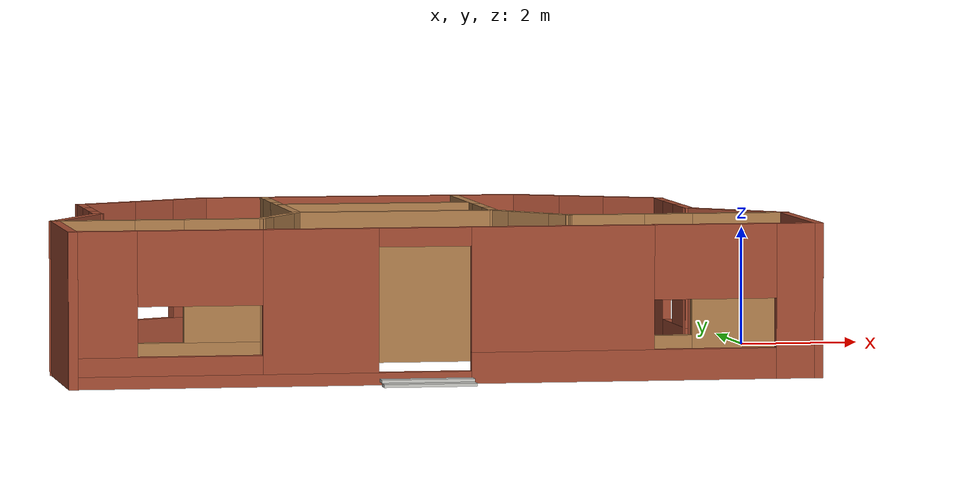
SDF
<?xml version='1.0'?>
<sdf version='1.6'>
  <model name='office'>
    <pose frame=''>-6.12434 -2.55987 0 0 -0 0</pose>
    <link name='Stairs_1'>
      <visual name='Stairs_1_Visual_0'>
        <pose frame=''>-0.38323 -4.06197 0.025 0 -0 -3.14159</pose>
        <geometry>
          <box>
            <size>1.5 0.25 0.05</size>
          </box>
        </geometry>
        <material>
          <script>
            <uri>file://media/materials/scripts/gazebo.material</uri>
            <name>Gazebo/CeilingTiled</name>
          </script>
          <ambient>0.996078 0.47451 0.0196078 1</ambient>
        </material>
        <meta>
          <layer>0</layer>
        </meta>
      </visual>
      <collision name='Stairs_1_Collision_0'>
        <geometry>
          <box>
            <size>1.5 0.25 0.05</size>
          </box>
        </geometry>
        <pose frame=''>-0.38323 -4.06197 0.025 0 -0 -3.14159</pose>
      </collision>
      <visual name='Stairs_1_Visual_1'>
        <pose frame=''>-0.38323 -3.81197 0.075 0 -0 -3.14159</pose>
        <geometry>
          <box>
            <size>1.5 0.25 0.05</size>
          </box>
        </geometry>
        <material>
          <script>
            <uri>file://media/materials/scripts/gazebo.material</uri>
            <name>Gazebo/CeilingTiled</name>
          </script>
          <ambient>0.996078 0.47451 0.0196078 1</ambient>
        </material>
        <meta>
          <layer>0</layer>
        </meta>
      </visual>
      <collision name='Stairs_1_Collision_1'>
        <geometry>
          <box>
            <size>1.5 0.25 0.05</size>
          </box>
        </geometry>
        <pose frame=''>-0.38323 -3.81197 0.075 0 -0 -3.14159</pose>
      </collision>
    </link>
    <link name='Wall_0'>
      <collision name='Wall_0_Collision'>
        <geometry>
          <box>
            <size>1.98188 0.15 2.5</size>
          </box>
        </geometry>
        <pose frame=''>0 0 1.25 0 -0 0</pose>
      </collision>
      <visual name='Wall_0_Visual'>
        <pose frame=''>0 0 1.25 0 -0 0</pose>
        <geometry>
          <box>
            <size>1.98188 0.15 2.5</size>
          </box>
        </geometry>
        <material>
          <script>
            <uri>file://media/materials/scripts/gazebo.material</uri>
            <name>Gazebo/Bricks</name>
          </script>
          <ambient>1 1 1 1</ambient>
        </material>
        <meta>
          <layer>0</layer>
        </meta>
      </visual>
      <pose frame=''>-5.58652 -0.368929 0 0 -0 1.06997</pose>
    </link>
    <link name='Wall_1'>
      <pose frame=''>-5.14673 1.60952 0 0 -0 1.5708</pose>
      <visual name='Wall_1_Visual_0'>
        <pose frame=''>-0.885279 0 1.25 0 -0 0</pose>
        <geometry>
          <box>
            <size>0.729441 0.15 2.5</size>
          </box>
        </geometry>
        <material>
          <script>
            <uri>file://media/materials/scripts/gazebo.material</uri>
            <name>Gazebo/Bricks</name>
          </script>
          <ambient>1 1 1 1</ambient>
        </material>
        <meta>
          <layer>0</layer>
        </meta>
      </visual>
      <collision name='Wall_1_Collision_0'>
        <geometry>
          <box>
            <size>0.729441 0.15 2.5</size>
          </box>
        </geometry>
        <pose frame=''>-0.885279 0 1.25 0 -0 0</pose>
      </collision>
      <visual name='Wall_1_Visual_1'>
        <pose frame=''>0.364721 0 0.25 0 -0 0</pose>
        <geometry>
          <box>
            <size>1.77056 0.15 0.5</size>
          </box>
        </geometry>
        <material>
          <script>
            <uri>file://media/materials/scripts/gazebo.material</uri>
            <name>Gazebo/Bricks</name>
          </script>
          <ambient>1 1 1 1</ambient>
        </material>
        <meta>
          <layer>0</layer>
        </meta>
      </visual>
      <collision name='Wall_1_Collision_1'>
        <geometry>
          <box>
            <size>1.77056 0.15 0.5</size>
          </box>
        </geometry>
        <pose frame=''>0.364721 0 0.25 0 -0 0</pose>
      </collision>
      <visual name='Wall_1_Visual_2'>
        <pose frame=''>0.764721 0 1.5 0 -0 0</pose>
        <geometry>
          <box>
            <size>0.970559 0.15 2</size>
          </box>
        </geometry>
        <material>
          <script>
            <uri>file://media/materials/scripts/gazebo.material</uri>
            <name>Gazebo/Bricks</name>
          </script>
          <ambient>1 1 1 1</ambient>
        </material>
        <meta>
          <layer>0</layer>
        </meta>
      </visual>
      <collision name='Wall_1_Collision_2'>
        <geometry>
          <box>
            <size>0.970559 0.15 2</size>
          </box>
        </geometry>
        <pose frame=''>0.764721 0 1.5 0 -0 0</pose>
      </collision>
      <visual name='Wall_1_Visual_3'>
        <pose frame=''>-0.120559 0 1.9 0 -0 0</pose>
        <geometry>
          <box>
            <size>0.8 0.15 1.2</size>
          </box>
        </geometry>
        <material>
          <script>
            <uri>file://media/materials/scripts/gazebo.material</uri>
            <name>Gazebo/Bricks</name>
          </script>
          <ambient>1 1 1 1</ambient>
        </material>
        <meta>
          <layer>0</layer>
        </meta>
      </visual>
      <collision name='Wall_1_Collision_3'>
        <geometry>
          <box>
            <size>0.8 0.15 1.2</size>
          </box>
        </geometry>
        <pose frame=''>-0.120559 0 1.9 0 -0 0</pose>
      </collision>
    </link>
    <link name='Wall_11'>
      <pose frame=''>-0.005779 -3.66155 0 0 -0 3.14144</pose>
      <visual name='Wall_11_Visual_0'>
        <pose frame=''>-5.71149 0 1.25 0 -0 0</pose>
        <geometry>
          <box>
            <size>0.768083 0.15 2.5</size>
          </box>
        </geometry>
        <material>
          <script>
            <uri>file://media/materials/scripts/gazebo.material</uri>
            <name>Gazebo/Bricks</name>
          </script>
          <ambient>1 1 1 1</ambient>
        </material>
        <meta>
          <layer>0</layer>
        </meta>
      </visual>
      <collision name='Wall_11_Collision_0'>
        <geometry>
          <box>
            <size>0.768083 0.15 2.5</size>
          </box>
        </geometry>
        <pose frame=''>-5.71149 0 1.25 0 -0 0</pose>
      </collision>
      <visual name='Wall_11_Visual_1'>
        <pose frame=''>-2.84313 0 0.25 0 -0 0</pose>
        <geometry>
          <box>
            <size>4.96863 0.15 0.5</size>
          </box>
        </geometry>
        <material>
          <script>
            <uri>file://media/materials/scripts/gazebo.material</uri>
            <name>Gazebo/Bricks</name>
          </script>
          <ambient>1 1 1 1</ambient>
        </material>
        <meta>
          <layer>0</layer>
        </meta>
      </visual>
      <collision name='Wall_11_Collision_1'>
        <geometry>
          <box>
            <size>4.96863 0.15 0.5</size>
          </box>
        </geometry>
        <pose frame=''>-2.84313 0 0.25 0 -0 0</pose>
      </collision>
      <visual name='Wall_11_Visual_2'>
        <pose frame=''>2.86836 0 0.1 0 -0 0</pose>
        <geometry>
          <box>
            <size>6.45434 0.15 0.2</size>
          </box>
        </geometry>
        <material>
          <script>
            <uri>file://media/materials/scripts/gazebo.material</uri>
            <name>Gazebo/Bricks</name>
          </script>
          <ambient>1 1 1 1</ambient>
        </material>
        <meta>
          <layer>0</layer>
        </meta>
      </visual>
      <collision name='Wall_11_Collision_2'>
        <geometry>
          <box>
            <size>6.45434 0.15 0.2</size>
          </box>
        </geometry>
        <pose frame=''>2.86836 0 0.1 0 -0 0</pose>
      </collision>
      <visual name='Wall_11_Visual_3'>
        <pose frame=''>2.07037 0 1.35 0 -0 0</pose>
        <geometry>
          <box>
            <size>1.85837 0.15 2.3</size>
          </box>
        </geometry>
        <material>
          <script>
            <uri>file://media/materials/scripts/gazebo.material</uri>
            <name>Gazebo/Bricks</name>
          </script>
          <ambient>1 1 1 1</ambient>
        </material>
        <meta>
          <layer>0</layer>
        </meta>
      </visual>
      <collision name='Wall_11_Collision_3'>
        <geometry>
          <box>
            <size>1.85837 0.15 2.3</size>
          </box>
        </geometry>
        <pose frame=''>2.07037 0 1.35 0 -0 0</pose>
      </collision>
      <visual name='Wall_11_Visual_4'>
        <pose frame=''>4.54754 0 0.35 0 -0 0</pose>
        <geometry>
          <box>
            <size>3.09597 0.15 0.3</size>
          </box>
        </geometry>
        <material>
          <script>
            <uri>file://media/materials/scripts/gazebo.material</uri>
            <name>Gazebo/Bricks</name>
          </script>
          <ambient>1 1 1 1</ambient>
        </material>
        <meta>
          <layer>0</layer>
        </meta>
      </visual>
      <collision name='Wall_11_Collision_4'>
        <geometry>
          <box>
            <size>3.09597 0.15 0.3</size>
          </box>
        </geometry>
        <pose frame=''>4.54754 0 0.35 0 -0 0</pose>
      </collision>
      <visual name='Wall_11_Visual_5'>
        <pose frame=''>-1.84313 0 1.5 0 -0 0</pose>
        <geometry>
          <box>
            <size>2.96863 0.15 2</size>
          </box>
        </geometry>
        <material>
          <script>
            <uri>file://media/materials/scripts/gazebo.material</uri>
            <name>Gazebo/Bricks</name>
          </script>
          <ambient>1 1 1 1</ambient>
        </material>
        <meta>
          <layer>0</layer>
        </meta>
      </visual>
      <collision name='Wall_11_Collision_5'>
        <geometry>
          <box>
            <size>2.96863 0.15 2</size>
          </box>
        </geometry>
        <pose frame=''>-1.84313 0 1.5 0 -0 0</pose>
      </collision>
      <visual name='Wall_11_Visual_6'>
        <pose frame=''>-1.84313 0 1.5 0 -0 0</pose>
        <geometry>
          <box>
            <size>2.96863 0.15 2</size>
          </box>
        </geometry>
        <material>
          <script>
            <uri>file://media/materials/scripts/gazebo.material</uri>
            <name>Gazebo/Bricks</name>
          </script>
          <ambient>1 1 1 1</ambient>
        </material>
        <meta>
          <layer>0</layer>
        </meta>
      </visual>
      <collision name='Wall_11_Collision_6'>
        <geometry>
          <box>
            <size>2.96863 0.15 2</size>
          </box>
        </geometry>
        <pose frame=''>-1.84313 0 1.5 0 -0 0</pose>
      </collision>
      <visual name='Wall_11_Visual_7'>
        <pose frame=''>5.54754 0 1.5 0 -0 0</pose>
        <geometry>
          <box>
            <size>1.09597 0.15 2</size>
          </box>
        </geometry>
        <material>
          <script>
            <uri>file://media/materials/scripts/gazebo.material</uri>
            <name>Gazebo/Bricks</name>
          </script>
          <ambient>1 1 1 1</ambient>
        </material>
        <meta>
          <layer>0</layer>
        </meta>
      </visual>
      <collision name='Wall_11_Collision_7'>
        <geometry>
          <box>
            <size>1.09597 0.15 2</size>
          </box>
        </geometry>
        <pose frame=''>5.54754 0 1.5 0 -0 0</pose>
      </collision>
      <visual name='Wall_11_Visual_8'>
        <pose frame=''>-4.32744 0 1.9 0 -0 0</pose>
        <geometry>
          <box>
            <size>2 0.15 1.2</size>
          </box>
        </geometry>
        <material>
          <script>
            <uri>file://media/materials/scripts/gazebo.material</uri>
            <name>Gazebo/Bricks</name>
          </script>
          <ambient>1 1 1 1</ambient>
        </material>
        <meta>
          <layer>0</layer>
        </meta>
      </visual>
      <collision name='Wall_11_Collision_8'>
        <geometry>
          <box>
            <size>2 0.15 1.2</size>
          </box>
        </geometry>
        <pose frame=''>-4.32744 0 1.9 0 -0 0</pose>
      </collision>
      <visual name='Wall_11_Visual_9'>
        <pose frame=''>3.99955 0 1.9 0 -0 0</pose>
        <geometry>
          <box>
            <size>2 0.15 1.2</size>
          </box>
        </geometry>
        <material>
          <script>
            <uri>file://media/materials/scripts/gazebo.material</uri>
            <name>Gazebo/Bricks</name>
          </script>
          <ambient>1 1 1 1</ambient>
        </material>
        <meta>
          <layer>0</layer>
        </meta>
      </visual>
      <collision name='Wall_11_Collision_9'>
        <geometry>
          <box>
            <size>2 0.15 1.2</size>
          </box>
        </geometry>
        <pose frame=''>3.99955 0 1.9 0 -0 0</pose>
      </collision>
      <visual name='Wall_11_Visual_10'>
        <pose frame=''>0.391186 0 2.35 0 -0 0</pose>
        <geometry>
          <box>
            <size>1.5 0.15 0.3</size>
          </box>
        </geometry>
        <material>
          <script>
            <uri>file://media/materials/scripts/gazebo.material</uri>
            <name>Gazebo/Bricks</name>
          </script>
          <ambient>1 1 1 1</ambient>
        </material>
        <meta>
          <layer>0</layer>
        </meta>
      </visual>
      <collision name='Wall_11_Collision_10'>
        <geometry>
          <box>
            <size>1.5 0.15 0.3</size>
          </box>
        </geometry>
        <pose frame=''>0.391186 0 2.35 0 -0 0</pose>
      </collision>
      <visual name='Wall_11_Visual_11'>
        <pose frame=''>0.391186 0 2.35 0 -0 0</pose>
        <geometry>
          <box>
            <size>1.5 0.15 0.3</size>
          </box>
        </geometry>
        <material>
          <script>
            <uri>file://media/materials/scripts/gazebo.material</uri>
            <name>Gazebo/Bricks</name>
          </script>
          <ambient>1 1 1 1</ambient>
        </material>
        <meta>
          <layer>0</layer>
        </meta>
      </visual>
      <collision name='Wall_11_Collision_11'>
        <geometry>
          <box>
            <size>1.5 0.15 0.3</size>
          </box>
        </geometry>
        <pose frame=''>0.391186 0 2.35 0 -0 0</pose>
      </collision>
    </link>
    <link name='Wall_13'>
      <pose frame=''>-4.35131 -1.15226 0 0 -0 0</pose>
      <visual name='Wall_13_Visual_0'>
        <pose frame=''>-1.06906 0 1.25 0 -0 0</pose>
        <geometry>
          <box>
            <size>1.36187 0.15 2.5</size>
          </box>
        </geometry>
        <material>
          <script>
            <uri>file://media/materials/scripts/gazebo.material</uri>
            <name>Gazebo/Wood</name>
          </script>
          <ambient>1 1 1 1</ambient>
        </material>
        <meta>
          <layer>0</layer>
        </meta>
      </visual>
      <collision name='Wall_13_Collision_0'>
        <geometry>
          <box>
            <size>1.36187 0.15 2.5</size>
          </box>
        </geometry>
        <pose frame=''>-1.06906 0 1.25 0 -0 0</pose>
      </collision>
      <visual name='Wall_13_Visual_1'>
        <pose frame=''>0.680938 0 0.25 0 -0 0</pose>
        <geometry>
          <box>
            <size>2.13813 0.15 0.5</size>
          </box>
        </geometry>
        <material>
          <script>
            <uri>file://media/materials/scripts/gazebo.material</uri>
            <name>Gazebo/Wood</name>
          </script>
          <ambient>1 1 1 1</ambient>
        </material>
        <meta>
          <layer>0</layer>
        </meta>
      </visual>
      <collision name='Wall_13_Collision_1'>
        <geometry>
          <box>
            <size>2.13813 0.15 0.5</size>
          </box>
        </geometry>
        <pose frame=''>0.680938 0 0.25 0 -0 0</pose>
      </collision>
      <visual name='Wall_13_Visual_2'>
        <pose frame=''>1.08094 0 1.5 0 -0 0</pose>
        <geometry>
          <box>
            <size>1.33813 0.15 2</size>
          </box>
        </geometry>
        <material>
          <script>
            <uri>file://media/materials/scripts/gazebo.material</uri>
            <name>Gazebo/Wood</name>
          </script>
          <ambient>1 1 1 1</ambient>
        </material>
        <meta>
          <layer>0</layer>
        </meta>
      </visual>
      <collision name='Wall_13_Collision_2'>
        <geometry>
          <box>
            <size>1.33813 0.15 2</size>
          </box>
        </geometry>
        <pose frame=''>1.08094 0 1.5 0 -0 0</pose>
      </collision>
      <visual name='Wall_13_Visual_3'>
        <pose frame=''>0.011875 0 1.9 0 -0 0</pose>
        <geometry>
          <box>
            <size>0.8 0.15 1.2</size>
          </box>
        </geometry>
        <material>
          <script>
            <uri>file://media/materials/scripts/gazebo.material</uri>
            <name>Gazebo/Wood</name>
          </script>
          <ambient>1 1 1 1</ambient>
        </material>
        <meta>
          <layer>0</layer>
        </meta>
      </visual>
      <collision name='Wall_13_Collision_3'>
        <geometry>
          <box>
            <size>0.8 0.15 1.2</size>
          </box>
        </geometry>
        <pose frame=''>0.011875 0 1.9 0 -0 0</pose>
      </collision>
    </link>
    <link name='Wall_14'>
      <pose frame=''>-2.27631 -0.459443 0 0 -0 1.0472</pose>
      <visual name='Wall_14_Visual_0'>
        <pose frame=''>-0.639423 0 1.25 0 -0 0</pose>
        <geometry>
          <box>
            <size>0.471153 0.15 2.5</size>
          </box>
        </geometry>
        <material>
          <script>
            <uri>file://media/materials/scripts/gazebo.material</uri>
            <name>Gazebo/Wood</name>
          </script>
          <ambient>1 1 1 1</ambient>
        </material>
        <meta>
          <layer>0</layer>
        </meta>
      </visual>
      <collision name='Wall_14_Collision_0'>
        <geometry>
          <box>
            <size>0.471153 0.15 2.5</size>
          </box>
        </geometry>
        <pose frame=''>-0.639423 0 1.25 0 -0 0</pose>
      </collision>
      <visual name='Wall_14_Visual_1'>
        <pose frame=''>0.685577 0 1.25 0 -0 0</pose>
        <geometry>
          <box>
            <size>0.378847 0.15 2.5</size>
          </box>
        </geometry>
        <material>
          <script>
            <uri>file://media/materials/scripts/gazebo.material</uri>
            <name>Gazebo/Wood</name>
          </script>
          <ambient>1 1 1 1</ambient>
        </material>
        <meta>
          <layer>0</layer>
        </meta>
      </visual>
      <collision name='Wall_14_Collision_1'>
        <geometry>
          <box>
            <size>0.378847 0.15 2.5</size>
          </box>
        </geometry>
        <pose frame=''>0.685577 0 1.25 0 -0 0</pose>
      </collision>
      <visual name='Wall_14_Visual_2'>
        <pose frame=''>0.046153 0 2.25 0 -0 0</pose>
        <geometry>
          <box>
            <size>0.9 0.15 0.5</size>
          </box>
        </geometry>
        <material>
          <script>
            <uri>file://media/materials/scripts/gazebo.material</uri>
            <name>Gazebo/Wood</name>
          </script>
          <ambient>1 1 1 1</ambient>
        </material>
        <meta>
          <layer>0</layer>
        </meta>
      </visual>
      <collision name='Wall_14_Collision_2'>
        <geometry>
          <box>
            <size>0.9 0.15 0.5</size>
          </box>
        </geometry>
        <pose frame=''>0.046153 0 2.25 0 -0 0</pose>
      </collision>
    </link>
    <link name='Wall_15'>
      <pose frame=''>-1.8763 2.15838 0 0 -0 1.5708</pose>
      <visual name='Wall_15_Visual_0'>
        <pose frame=''>-0.703876 0 1.25 0 -0 0</pose>
        <geometry>
          <box>
            <size>2.59225 0.15 2.5</size>
          </box>
        </geometry>
        <material>
          <script>
            <uri>file://media/materials/scripts/gazebo.material</uri>
            <name>Gazebo/Wood</name>
          </script>
          <ambient>1 1 1 1</ambient>
        </material>
        <meta>
          <layer>0</layer>
        </meta>
      </visual>
      <collision name='Wall_15_Collision_0'>
        <geometry>
          <box>
            <size>2.59225 0.15 2.5</size>
          </box>
        </geometry>
        <pose frame=''>-0.703876 0 1.25 0 -0 0</pose>
      </collision>
      <visual name='Wall_15_Visual_1'>
        <pose frame=''>1.74612 0 1.25 0 -0 0</pose>
        <geometry>
          <box>
            <size>0.507751 0.15 2.5</size>
          </box>
        </geometry>
        <material>
          <script>
            <uri>file://media/materials/scripts/gazebo.material</uri>
            <name>Gazebo/Wood</name>
          </script>
          <ambient>1 1 1 1</ambient>
        </material>
        <meta>
          <layer>0</layer>
        </meta>
      </visual>
      <collision name='Wall_15_Collision_1'>
        <geometry>
          <box>
            <size>0.507751 0.15 2.5</size>
          </box>
        </geometry>
        <pose frame=''>1.74612 0 1.25 0 -0 0</pose>
      </collision>
      <visual name='Wall_15_Visual_2'>
        <pose frame=''>1.04225 0 2.25 0 -0 0</pose>
        <geometry>
          <box>
            <size>0.9 0.15 0.5</size>
          </box>
        </geometry>
        <material>
          <script>
            <uri>file://media/materials/scripts/gazebo.material</uri>
            <name>Gazebo/Wood</name>
          </script>
          <ambient>1 1 1 1</ambient>
        </material>
        <meta>
          <layer>0</layer>
        </meta>
      </visual>
      <collision name='Wall_15_Collision_2'>
        <geometry>
          <box>
            <size>0.9 0.15 0.5</size>
          </box>
        </geometry>
        <pose frame=''>1.04225 0 2.25 0 -0 0</pose>
      </collision>
    </link>
    <link name='Wall_17'>
      <pose frame=''>4.22996 -1.12475 0 0 -0 3.14097</pose>
      <visual name='Wall_17_Visual_0'>
        <pose frame=''>-1.055 0 1.25 0 -0 0</pose>
        <geometry>
          <box>
            <size>1.62416 0.15 2.5</size>
          </box>
        </geometry>
        <material>
          <script>
            <uri>file://media/materials/scripts/gazebo.material</uri>
            <name>Gazebo/Wood</name>
          </script>
          <ambient>1 1 1 1</ambient>
        </material>
        <meta>
          <layer>0</layer>
        </meta>
      </visual>
      <collision name='Wall_17_Collision_0'>
        <geometry>
          <box>
            <size>1.62416 0.15 2.5</size>
          </box>
        </geometry>
        <pose frame=''>-1.055 0 1.25 0 -0 0</pose>
      </collision>
      <visual name='Wall_17_Visual_1'>
        <pose frame=''>0.812077 0 0.25 0 -0 0</pose>
        <geometry>
          <box>
            <size>2.11001 0.15 0.5</size>
          </box>
        </geometry>
        <material>
          <script>
            <uri>file://media/materials/scripts/gazebo.material</uri>
            <name>Gazebo/Wood</name>
          </script>
          <ambient>1 1 1 1</ambient>
        </material>
        <meta>
          <layer>0</layer>
        </meta>
      </visual>
      <collision name='Wall_17_Collision_1'>
        <geometry>
          <box>
            <size>2.11001 0.15 0.5</size>
          </box>
        </geometry>
        <pose frame=''>0.812077 0 0.25 0 -0 0</pose>
      </collision>
      <visual name='Wall_17_Visual_2'>
        <pose frame=''>1.21208 0 1.5 0 -0 0</pose>
        <geometry>
          <box>
            <size>1.31001 0.15 2</size>
          </box>
        </geometry>
        <material>
          <script>
            <uri>file://media/materials/scripts/gazebo.material</uri>
            <name>Gazebo/Wood</name>
          </script>
          <ambient>1 1 1 1</ambient>
        </material>
        <meta>
          <layer>0</layer>
        </meta>
      </visual>
      <collision name='Wall_17_Collision_2'>
        <geometry>
          <box>
            <size>1.31001 0.15 2</size>
          </box>
        </geometry>
        <pose frame=''>1.21208 0 1.5 0 -0 0</pose>
      </collision>
      <visual name='Wall_17_Visual_3'>
        <pose frame=''>0.157074 0 1.9 0 -0 0</pose>
        <geometry>
          <box>
            <size>0.8 0.15 1.2</size>
          </box>
        </geometry>
        <material>
          <script>
            <uri>file://media/materials/scripts/gazebo.material</uri>
            <name>Gazebo/Wood</name>
          </script>
          <ambient>1 1 1 1</ambient>
        </material>
        <meta>
          <layer>0</layer>
        </meta>
      </visual>
      <collision name='Wall_17_Collision_3'>
        <geometry>
          <box>
            <size>0.8 0.15 1.2</size>
          </box>
        </geometry>
        <pose frame=''>0.157074 0 1.9 0 -0 0</pose>
      </collision>
    </link>
    <link name='Wall_18'>
      <pose frame=''>1.92549 -0.446567 0 0 -0 2.21863</pose>
      <visual name='Wall_18_Visual_0'>
        <pose frame=''>-0.686549 0 1.25 0 -0 0</pose>
        <geometry>
          <box>
            <size>0.475088 0.15 2.5</size>
          </box>
        </geometry>
        <material>
          <script>
            <uri>file://media/materials/scripts/gazebo.material</uri>
            <name>Gazebo/Wood</name>
          </script>
          <ambient>1 1 1 1</ambient>
        </material>
        <meta>
          <layer>0</layer>
        </meta>
      </visual>
      <collision name='Wall_18_Collision_0'>
        <geometry>
          <box>
            <size>0.475088 0.15 2.5</size>
          </box>
        </geometry>
        <pose frame=''>-0.686549 0 1.25 0 -0 0</pose>
      </collision>
      <visual name='Wall_18_Visual_1'>
        <pose frame=''>0.687544 0 1.25 0 -0 0</pose>
        <geometry>
          <box>
            <size>0.473098 0.15 2.5</size>
          </box>
        </geometry>
        <material>
          <script>
            <uri>file://media/materials/scripts/gazebo.material</uri>
            <name>Gazebo/Wood</name>
          </script>
          <ambient>1 1 1 1</ambient>
        </material>
        <meta>
          <layer>0</layer>
        </meta>
      </visual>
      <collision name='Wall_18_Collision_1'>
        <geometry>
          <box>
            <size>0.473098 0.15 2.5</size>
          </box>
        </geometry>
        <pose frame=''>0.687544 0 1.25 0 -0 0</pose>
      </collision>
      <visual name='Wall_18_Visual_2'>
        <pose frame=''>0.000995 0 2.25 0 -0 0</pose>
        <geometry>
          <box>
            <size>0.9 0.15 0.5</size>
          </box>
        </geometry>
        <material>
          <script>
            <uri>file://media/materials/scripts/gazebo.material</uri>
            <name>Gazebo/Wood</name>
          </script>
          <ambient>1 1 1 1</ambient>
        </material>
        <meta>
          <layer>0</layer>
        </meta>
      </visual>
      <collision name='Wall_18_Collision_2'>
        <geometry>
          <box>
            <size>0.9 0.15 0.5</size>
          </box>
        </geometry>
        <pose frame=''>0.000995 0 2.25 0 -0 0</pose>
      </collision>
    </link>
    <link name='Wall_19'>
      <pose frame=''>1.41143 2.12892 0 0 -0 1.57167</pose>
      <visual name='Wall_19_Visual_0'>
        <pose frame=''>-1.58952 0 1.25 0 -0 0</pose>
        <geometry>
          <box>
            <size>0.767825 0.15 2.5</size>
          </box>
        </geometry>
        <material>
          <script>
            <uri>file://media/materials/scripts/gazebo.material</uri>
            <name>Gazebo/Wood</name>
          </script>
          <ambient>1 1 1 1</ambient>
        </material>
        <meta>
          <layer>0</layer>
        </meta>
      </visual>
      <collision name='Wall_19_Collision_0'>
        <geometry>
          <box>
            <size>0.767825 0.15 2.5</size>
          </box>
        </geometry>
        <pose frame=''>-1.58952 0 1.25 0 -0 0</pose>
      </collision>
      <visual name='Wall_19_Visual_1'>
        <pose frame=''>0.833912 0 1.25 0 -0 0</pose>
        <geometry>
          <box>
            <size>2.27903 0.15 2.5</size>
          </box>
        </geometry>
        <material>
          <script>
            <uri>file://media/materials/scripts/gazebo.material</uri>
            <name>Gazebo/Wood</name>
          </script>
          <ambient>1 1 1 1</ambient>
        </material>
        <meta>
          <layer>0</layer>
        </meta>
      </visual>
      <collision name='Wall_19_Collision_1'>
        <geometry>
          <box>
            <size>2.27903 0.15 2.5</size>
          </box>
        </geometry>
        <pose frame=''>0.833912 0 1.25 0 -0 0</pose>
      </collision>
      <visual name='Wall_19_Visual_2'>
        <pose frame=''>-0.755604 0 2.25 0 -0 0</pose>
        <geometry>
          <box>
            <size>0.9 0.15 0.5</size>
          </box>
        </geometry>
        <material>
          <script>
            <uri>file://media/materials/scripts/gazebo.material</uri>
            <name>Gazebo/Wood</name>
          </script>
          <ambient>1 1 1 1</ambient>
        </material>
        <meta>
          <layer>0</layer>
        </meta>
      </visual>
      <collision name='Wall_19_Collision_2'>
        <geometry>
          <box>
            <size>0.9 0.15 0.5</size>
          </box>
        </geometry>
        <pose frame=''>-0.755604 0 2.25 0 -0 0</pose>
      </collision>
    </link>
    <link name='Wall_2'>
      <pose frame=''>-4.0209 3.43452 0 0 -0 0.523599</pose>
      <visual name='Wall_2_Visual_0'>
        <pose frame=''>-0.801694 0 1.25 0 -0 0</pose>
        <geometry>
          <box>
            <size>1.14661 0.15 2.5</size>
          </box>
        </geometry>
        <material>
          <script>
            <uri>file://media/materials/scripts/gazebo.material</uri>
            <name>Gazebo/Bricks</name>
          </script>
          <ambient>1 1 1 1</ambient>
        </material>
        <meta>
          <layer>0</layer>
        </meta>
      </visual>
      <collision name='Wall_2_Collision_0'>
        <geometry>
          <box>
            <size>1.14661 0.15 2.5</size>
          </box>
        </geometry>
        <pose frame=''>-0.801694 0 1.25 0 -0 0</pose>
      </collision>
      <visual name='Wall_2_Visual_1'>
        <pose frame=''>0.573306 0 0.25 0 -0 0</pose>
        <geometry>
          <box>
            <size>1.60339 0.15 0.5</size>
          </box>
        </geometry>
        <material>
          <script>
            <uri>file://media/materials/scripts/gazebo.material</uri>
            <name>Gazebo/Bricks</name>
          </script>
          <ambient>1 1 1 1</ambient>
        </material>
        <meta>
          <layer>0</layer>
        </meta>
      </visual>
      <collision name='Wall_2_Collision_1'>
        <geometry>
          <box>
            <size>1.60339 0.15 0.5</size>
          </box>
        </geometry>
        <pose frame=''>0.573306 0 0.25 0 -0 0</pose>
      </collision>
      <visual name='Wall_2_Visual_2'>
        <pose frame=''>0.973306 0 1.5 0 -0 0</pose>
        <geometry>
          <box>
            <size>0.803388 0.15 2</size>
          </box>
        </geometry>
        <material>
          <script>
            <uri>file://media/materials/scripts/gazebo.material</uri>
            <name>Gazebo/Bricks</name>
          </script>
          <ambient>1 1 1 1</ambient>
        </material>
        <meta>
          <layer>0</layer>
        </meta>
      </visual>
      <collision name='Wall_2_Collision_2'>
        <geometry>
          <box>
            <size>0.803388 0.15 2</size>
          </box>
        </geometry>
        <pose frame=''>0.973306 0 1.5 0 -0 0</pose>
      </collision>
      <visual name='Wall_2_Visual_3'>
        <pose frame=''>0.171612 0 1.9 0 -0 0</pose>
        <geometry>
          <box>
            <size>0.8 0.15 1.2</size>
          </box>
        </geometry>
        <material>
          <script>
            <uri>file://media/materials/scripts/gazebo.material</uri>
            <name>Gazebo/Bricks</name>
          </script>
          <ambient>1 1 1 1</ambient>
        </material>
        <meta>
          <layer>0</layer>
        </meta>
      </visual>
      <collision name='Wall_2_Collision_3'>
        <geometry>
          <box>
            <size>0.8 0.15 1.2</size>
          </box>
        </geometry>
        <pose frame=''>0.171612 0 1.9 0 -0 0</pose>
      </collision>
    </link>
    <link name='Wall_21'>
      <collision name='Wall_21_Collision'>
        <geometry>
          <box>
            <size>3.43942 0.15 2.5</size>
          </box>
        </geometry>
        <pose frame=''>0 0 1.25 0 -0 0</pose>
      </collision>
      <visual name='Wall_21_Visual'>
        <pose frame=''>0 0 1.25 0 -0 0</pose>
        <geometry>
          <box>
            <size>3.43942 0.15 2.5</size>
          </box>
        </geometry>
        <material>
          <script>
            <uri>file://media/materials/scripts/gazebo.material</uri>
            <name>Gazebo/Wood</name>
          </script>
          <ambient>1 1 1 1</ambient>
        </material>
        <meta>
          <layer>0</layer>
        </meta>
      </visual>
      <pose frame=''>-0.231606 0.231936 0 0 0 -0.000876</pose>
    </link>
    <link name='Wall_23'>
      <collision name='Wall_23_Collision'>
        <geometry>
          <box>
            <size>3.25 0.15 2.5</size>
          </box>
        </geometry>
        <pose frame=''>0 0 1.25 0 -0 0</pose>
      </collision>
      <visual name='Wall_23_Visual'>
        <pose frame=''>0 0 1.25 0 -0 0</pose>
        <geometry>
          <box>
            <size>3.25 0.15 2.5</size>
          </box>
        </geometry>
        <material>
          <script>
            <uri>file://media/materials/scripts/gazebo.material</uri>
            <name>Gazebo/Wood</name>
          </script>
          <ambient>1 1 1 1</ambient>
        </material>
        <meta>
          <layer>0</layer>
        </meta>
      </visual>
      <pose frame=''>-0.289168 2.25227 0 0 -0 0</pose>
    </link>
    <link name='Wall_3'>
      <collision name='Wall_3_Collision'>
        <geometry>
          <box>
            <size>5.5 0.15 2.5</size>
          </box>
        </geometry>
        <pose frame=''>0 0 1.25 0 -0 0</pose>
      </collision>
      <visual name='Wall_3_Visual'>
        <pose frame=''>0 0 1.25 0 -0 0</pose>
        <geometry>
          <box>
            <size>5.5 0.15 2.5</size>
          </box>
        </geometry>
        <material>
          <script>
            <uri>file://media/materials/scripts/gazebo.material</uri>
            <name>Gazebo/Bricks</name>
          </script>
          <ambient>1 1 1 1</ambient>
        </material>
        <meta>
          <layer>0</layer>
        </meta>
      </visual>
      <pose frame=''>-0.220065 4.08452 0 0 -0 0</pose>
    </link>
    <link name='Wall_4'>
      <pose frame=''>3.58077 3.43452 0 0 0 -0.523599</pose>
      <visual name='Wall_4_Visual_0'>
        <pose frame=''>-0.914311 0 1.25 0 -0 0</pose>
        <geometry>
          <box>
            <size>0.921379 0.15 2.5</size>
          </box>
        </geometry>
        <material>
          <script>
            <uri>file://media/materials/scripts/gazebo.material</uri>
            <name>Gazebo/Bricks</name>
          </script>
          <ambient>1 1 1 1</ambient>
        </material>
        <meta>
          <layer>0</layer>
        </meta>
      </visual>
      <collision name='Wall_4_Collision_0'>
        <geometry>
          <box>
            <size>0.921379 0.15 2.5</size>
          </box>
        </geometry>
        <pose frame=''>-0.914311 0 1.25 0 -0 0</pose>
      </collision>
      <visual name='Wall_4_Visual_1'>
        <pose frame=''>0.460689 0 0.25 0 -0 0</pose>
        <geometry>
          <box>
            <size>1.82862 0.15 0.5</size>
          </box>
        </geometry>
        <material>
          <script>
            <uri>file://media/materials/scripts/gazebo.material</uri>
            <name>Gazebo/Bricks</name>
          </script>
          <ambient>1 1 1 1</ambient>
        </material>
        <meta>
          <layer>0</layer>
        </meta>
      </visual>
      <collision name='Wall_4_Collision_1'>
        <geometry>
          <box>
            <size>1.82862 0.15 0.5</size>
          </box>
        </geometry>
        <pose frame=''>0.460689 0 0.25 0 -0 0</pose>
      </collision>
      <visual name='Wall_4_Visual_2'>
        <pose frame=''>0.860689 0 1.5 0 -0 0</pose>
        <geometry>
          <box>
            <size>1.02862 0.15 2</size>
          </box>
        </geometry>
        <material>
          <script>
            <uri>file://media/materials/scripts/gazebo.material</uri>
            <name>Gazebo/Bricks</name>
          </script>
          <ambient>1 1 1 1</ambient>
        </material>
        <meta>
          <layer>0</layer>
        </meta>
      </visual>
      <collision name='Wall_4_Collision_2'>
        <geometry>
          <box>
            <size>1.02862 0.15 2</size>
          </box>
        </geometry>
        <pose frame=''>0.860689 0 1.5 0 -0 0</pose>
      </collision>
      <visual name='Wall_4_Visual_3'>
        <pose frame=''>-0.053621 0 1.9 0 -0 0</pose>
        <geometry>
          <box>
            <size>0.8 0.15 1.2</size>
          </box>
        </geometry>
        <material>
          <script>
            <uri>file://media/materials/scripts/gazebo.material</uri>
            <name>Gazebo/Bricks</name>
          </script>
          <ambient>1 1 1 1</ambient>
        </material>
        <meta>
          <layer>0</layer>
        </meta>
      </visual>
      <collision name='Wall_4_Collision_3'>
        <geometry>
          <box>
            <size>0.8 0.15 1.2</size>
          </box>
        </geometry>
        <pose frame=''>-0.053621 0 1.9 0 -0 0</pose>
      </collision>
    </link>
    <link name='Wall_5'>
      <pose frame=''>4.7066 1.48452 0 0 0 -1.5708</pose>
      <visual name='Wall_5_Visual_0'>
        <pose frame=''>-0.935982 0 1.25 0 -0 0</pose>
        <geometry>
          <box>
            <size>0.878036 0.15 2.5</size>
          </box>
        </geometry>
        <material>
          <script>
            <uri>file://media/materials/scripts/gazebo.material</uri>
            <name>Gazebo/Bricks</name>
          </script>
          <ambient>1 1 1 1</ambient>
        </material>
        <meta>
          <layer>0</layer>
        </meta>
      </visual>
      <collision name='Wall_5_Collision_0'>
        <geometry>
          <box>
            <size>0.878036 0.15 2.5</size>
          </box>
        </geometry>
        <pose frame=''>-0.935982 0 1.25 0 -0 0</pose>
      </collision>
      <visual name='Wall_5_Visual_1'>
        <pose frame=''>0.439018 0 0.25 0 -0 0</pose>
        <geometry>
          <box>
            <size>1.87196 0.15 0.5</size>
          </box>
        </geometry>
        <material>
          <script>
            <uri>file://media/materials/scripts/gazebo.material</uri>
            <name>Gazebo/Bricks</name>
          </script>
          <ambient>1 1 1 1</ambient>
        </material>
        <meta>
          <layer>0</layer>
        </meta>
      </visual>
      <collision name='Wall_5_Collision_1'>
        <geometry>
          <box>
            <size>1.87196 0.15 0.5</size>
          </box>
        </geometry>
        <pose frame=''>0.439018 0 0.25 0 -0 0</pose>
      </collision>
      <visual name='Wall_5_Visual_2'>
        <pose frame=''>0.839018 0 1.5 0 -0 0</pose>
        <geometry>
          <box>
            <size>1.07196 0.15 2</size>
          </box>
        </geometry>
        <material>
          <script>
            <uri>file://media/materials/scripts/gazebo.material</uri>
            <name>Gazebo/Bricks</name>
          </script>
          <ambient>1 1 1 1</ambient>
        </material>
        <meta>
          <layer>0</layer>
        </meta>
      </visual>
      <collision name='Wall_5_Collision_2'>
        <geometry>
          <box>
            <size>1.07196 0.15 2</size>
          </box>
        </geometry>
        <pose frame=''>0.839018 0 1.5 0 -0 0</pose>
      </collision>
      <visual name='Wall_5_Visual_3'>
        <pose frame=''>-0.096964 0 1.9 0 -0 0</pose>
        <geometry>
          <box>
            <size>0.8 0.15 1.2</size>
          </box>
        </geometry>
        <material>
          <script>
            <uri>file://media/materials/scripts/gazebo.material</uri>
            <name>Gazebo/Bricks</name>
          </script>
          <ambient>1 1 1 1</ambient>
        </material>
        <meta>
          <layer>0</layer>
        </meta>
      </visual>
      <collision name='Wall_5_Collision_3'>
        <geometry>
          <box>
            <size>0.8 0.15 1.2</size>
          </box>
        </geometry>
        <pose frame=''>-0.096964 0 1.9 0 -0 0</pose>
      </collision>
    </link>
    <link name='Wall_6'>
      <collision name='Wall_6_Collision'>
        <geometry>
          <box>
            <size>2.00675 0.15 2.5</size>
          </box>
        </geometry>
        <pose frame=''>0 0 1.25 0 -0 0</pose>
      </collision>
      <visual name='Wall_6_Visual'>
        <pose frame=''>0 0 1.25 0 -0 0</pose>
        <geometry>
          <box>
            <size>2.00675 0.15 2.5</size>
          </box>
        </geometry>
        <material>
          <script>
            <uri>file://media/materials/scripts/gazebo.material</uri>
            <name>Gazebo/Bricks</name>
          </script>
          <ambient>1 1 1 1</ambient>
        </material>
        <meta>
          <layer>0</layer>
        </meta>
      </visual>
      <pose frame=''>5.36432 -0.47068 0 0 0 -0.783479</pose>
    </link>
    <link name='Wall_7'>
      <collision name='Wall_7_Collision'>
        <geometry>
          <box>
            <size>2.687 0.15 2.5</size>
          </box>
        </geometry>
        <pose frame=''>0 0 1.25 0 -0 0</pose>
      </collision>
      <visual name='Wall_7_Visual'>
        <pose frame=''>0 0 1.25 0 -0 0</pose>
        <geometry>
          <box>
            <size>2.687 0.15 2.5</size>
          </box>
        </geometry>
        <material>
          <script>
            <uri>file://media/materials/scripts/gazebo.material</uri>
            <name>Gazebo/Bricks</name>
          </script>
          <ambient>1 1 1 1</ambient>
        </material>
        <meta>
          <layer>0</layer>
        </meta>
      </visual>
      <pose frame=''>6.01839 -2.39416 0 0 0 -1.57367</pose>
    </link>
    <link name='Wall_9'>
      <collision name='Wall_9_Collision'>
        <geometry>
          <box>
            <size>2.6584 0.15 2.5</size>
          </box>
        </geometry>
        <pose frame=''>0 0 1.25 0 -0 0</pose>
      </collision>
      <visual name='Wall_9_Visual'>
        <pose frame=''>0 0 1.25 0 -0 0</pose>
        <geometry>
          <box>
            <size>2.6584 0.15 2.5</size>
          </box>
        </geometry>
        <material>
          <script>
            <uri>file://media/materials/scripts/gazebo.material</uri>
            <name>Gazebo/Bricks</name>
          </script>
          <ambient>1 1 1 1</ambient>
        </material>
        <meta>
          <layer>0</layer>
        </meta>
      </visual>
      <pose frame=''>-6.02631 -2.40646 0 0 -0 1.5708</pose>
    </link>
    <static>1</static>
  </model>
</sdf>
